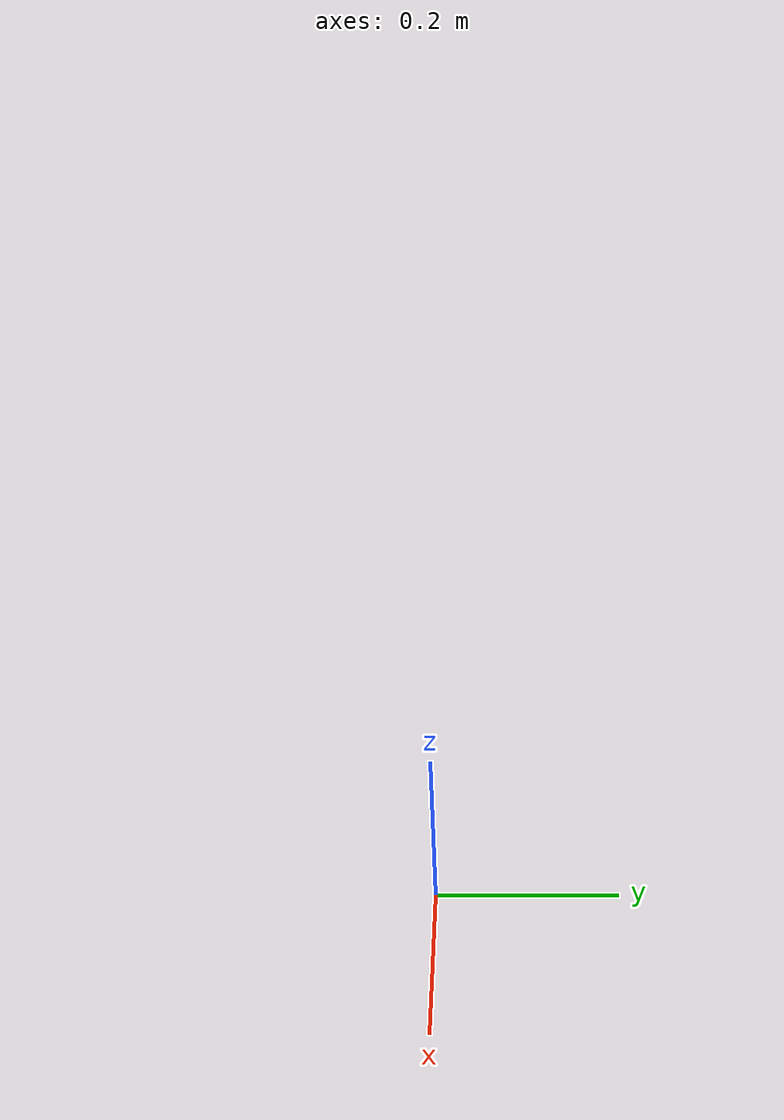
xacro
<?xml version="1.0"?>

<robot xmlns:xacro="http://www.ros.org/wiki/xacro" name="box_wall">
   <xacro:arg name="start_x" default="0"/>
   <xacro:arg name="start_y" default="0"/>
   <xacro:arg name="end_x" default="0"/>
   <xacro:arg name="end_y" default="0"/>

   <xacro:property name="x1" value="$(arg start_x)"/>
   <xacro:property name="x2" value="$(arg end_x)"/>
   <xacro:property name="y1" value="$(arg start_y)"/>
   <xacro:property name="y2" value="$(arg end_y)"/>

  <link name="wall" type="fixed">
    <inertial>
      <origin xyz="$(arg start_x) $(arg start_y) 0.5" />
      <mass value="1.0" />
      <inertia  ixx="0.0" ixy="0.0"  ixz="0.0"  iyy="0.0"  iyz="0.0"  izz="0.0" />
    </inertial>
    <visual>
      <origin xyz="$(arg start_x) $(arg start_y) 0.5"/>
      <geometry>
        <box size="${x2 - x1} ${y2 - y1} 1" />
      </geometry>
    </visual>
    <collision>
      <origin xyz="$(arg start_x) $(arg start_y) 0.5"/>
      <geometry>
        <box size="${x2 - x1} ${y2 - y1} 1" />
      </geometry>
    </collision>
  </link>
  <gazebo>
    <static>true</static>
    <material>Gazebo/Green</material>
  </gazebo>
</robot>
